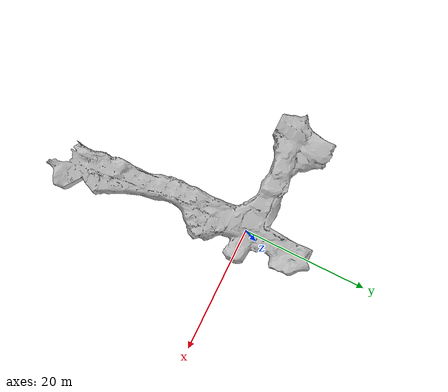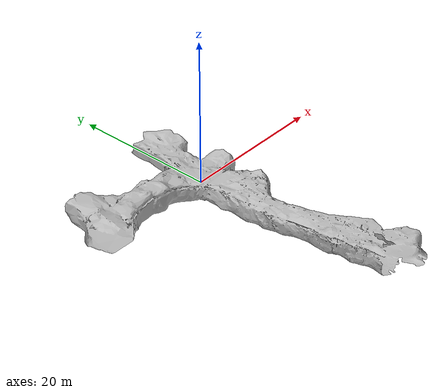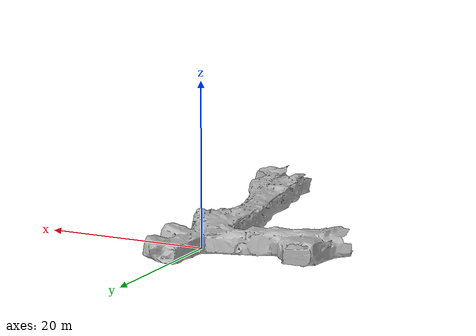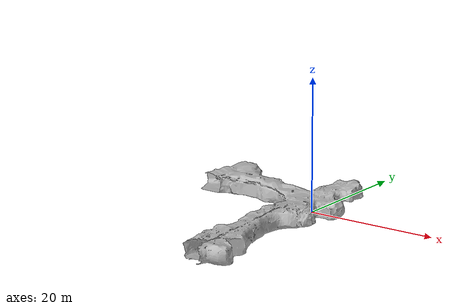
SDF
<?xml version="1.0" ?>
<sdf version="1.9">
  <world name="empty">

    <plugin filename="gz-sim-physics-system"
            name="gz::sim::systems::Physics"/>
    <plugin filename="gz-sim-scene-broadcaster-system"
            name="gz::sim::systems::SceneBroadcaster"/>
    <plugin filename="gz-sim-user-commands-system"
            name="gz::sim::systems::UserCommands"/>
    <plugin filename="gz-sim-contact-system"
            name="gz::sim::systems::Contact"/>
    <!-- gz-sim-sensors-system est charge par le xacro du robot -->

    <scene>
      <ambient>0.7 0.7 0.7 1</ambient>
      <background>0.05 0.05 0.05 1</background>
      <shadows>false</shadows>
    </scene>

    <light type="directional" name="sun">
      <cast_shadows>false</cast_shadows>
      <pose>0 0 10 0 0 0</pose>
      <diffuse>0.5 0.5 0.5 1</diffuse>
      <specular>0.1 0.1 0.1 1</specular>
      <direction>-0.3 0.2 -0.9</direction>
    </light>

    <include>
      <uri>model://mine_scan</uri>
      <pose>0 0 0 0 0 0</pose>
    </include>

  </world>
</sdf>

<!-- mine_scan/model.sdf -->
<sdf version="1.9">
  <model name="mine_scan">
    <static>true</static>
    <link name="link">
      <visual name="visual">
        <geometry>
          <mesh><uri>model://mine_scan/meshes/mine.obj</uri></mesh>
        </geometry>
      </visual>
      <collision name="collision">
        <geometry>
          <mesh><uri>model://mine_scan/meshes/mine_collision.obj</uri></mesh>
        </geometry>
      </collision>
    </link>
  </model>
</sdf>
